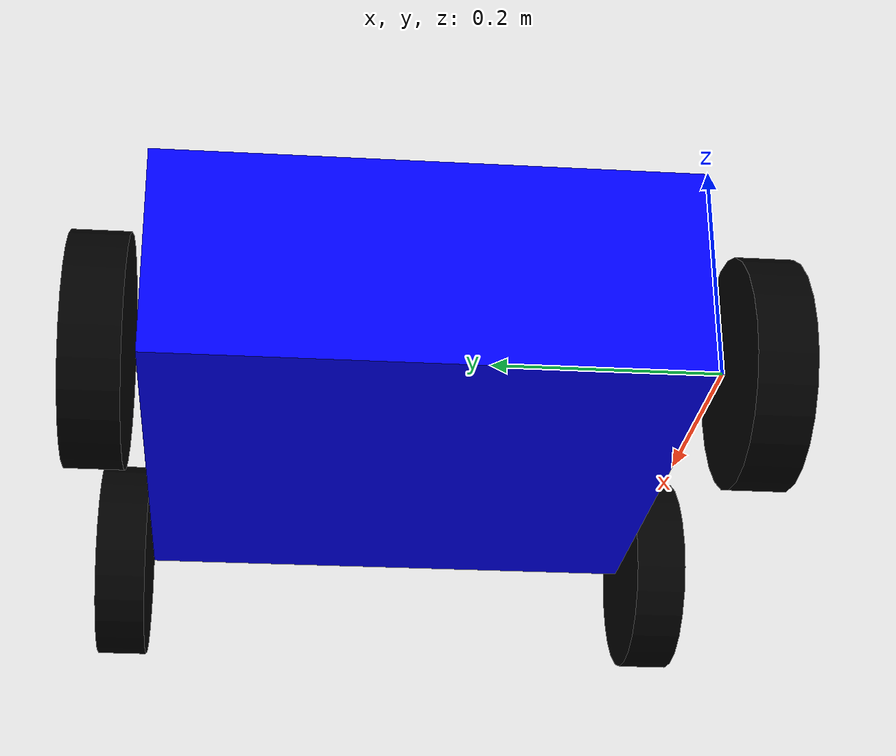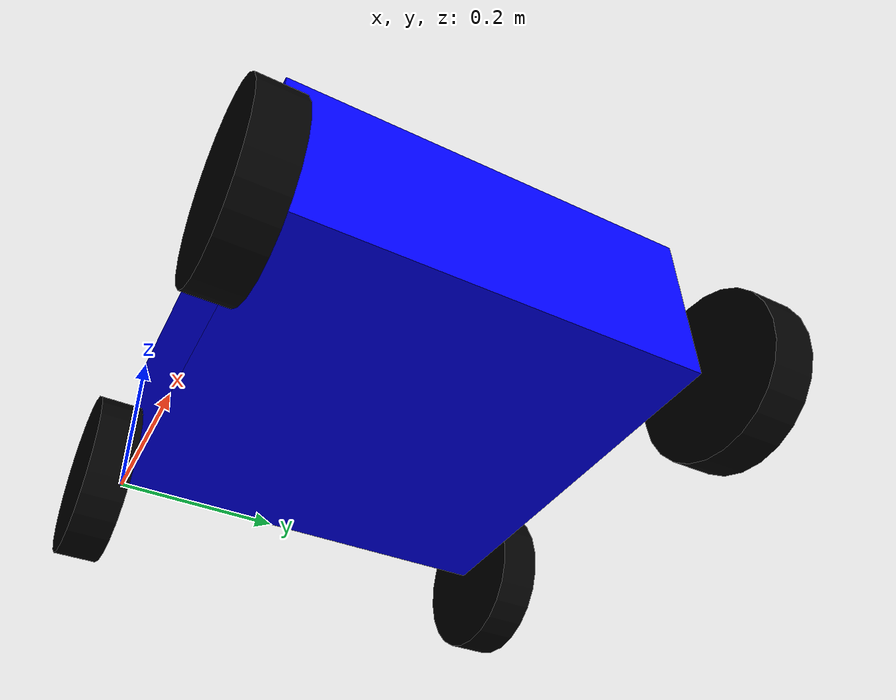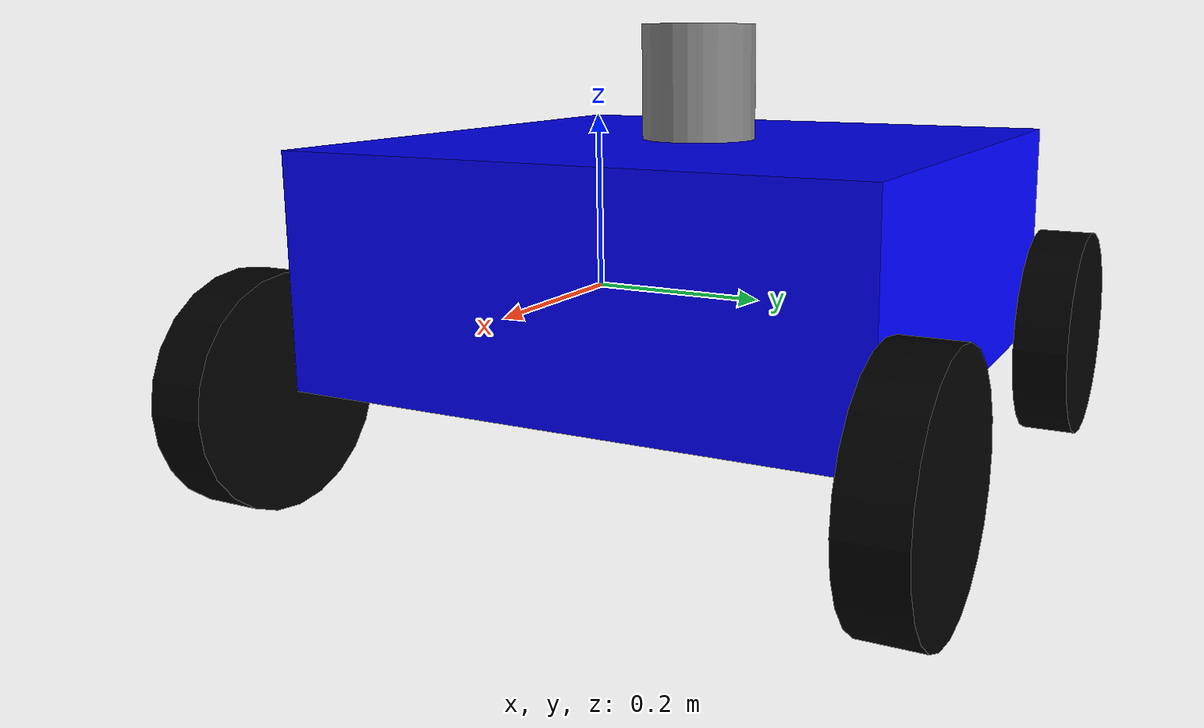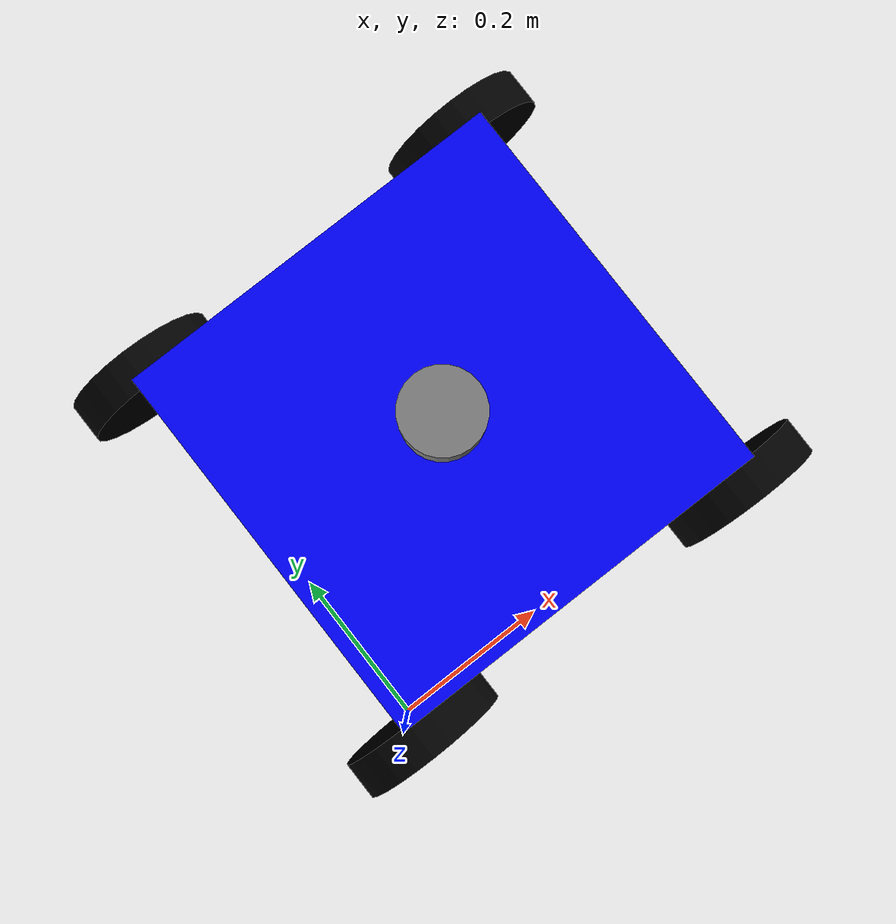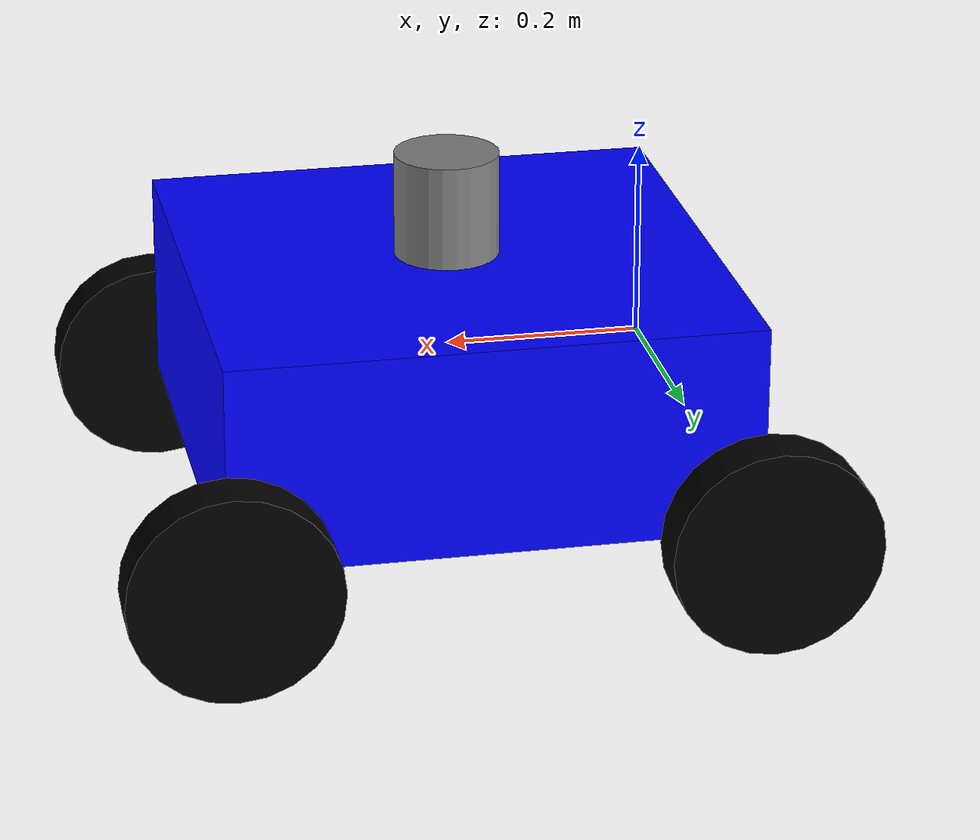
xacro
<?xml version="1.0"?>
<robot xmlns:xacro="http://ros.org/wiki/xacro" name="ground_drone">

<xacro:include filename="inertial_macros.xacro"/>

  <link name="base_footprint">
  </link>

  <!-- Define the main body -->
  <link name="body">
    <visual>
    <origin xyz="0.25 0.25 0.1"/>
      <geometry>
        <box size="0.5 0.5 0.2"/> <!-- Adjust size as needed -->
      </geometry>
      <material name="blue">
        <color rgba="0 0 1 1"/>
      </material>
    </visual>
     <collision>
      <geometry>
        <box size="0.5 0.5 0.2"/> <!-- Adjust size as needed -->
      </geometry>
    </collision>
     <xacro:inertial_box mass="0.1" x="0.5" y="0.5" z="0.2">
    <origin xyz="0 0 0" rpy="0 0 0" />
    </xacro:inertial_box>
  </link>

  <joint name="body_to_base_link" type="fixed">
    <parent link="base_footprint"/>
    <child link="body"/>
  </joint>

      <gazebo reference="body">
        <material>Gazebo/White</material>
    </gazebo>

  <!-- Define wheels -->
  <link name="wheel_front_left">
    <visual>
      <geometry>
        <cylinder radius="0.1" length="0.05"/>
      </geometry>
      <material name="black">
        <color rgba="0 0 0 1"/>
      </material>
    </visual>
    <collision>
      <geometry>
        <cylinder radius="0.1" length="0.05"/>
      </geometry>
    </collision>
     <xacro:inertial_cylinder mass="0.1" length="0.05" radius="0.1">
    <origin xyz="0 0 0" rpy="0 0 0" />
    </xacro:inertial_cylinder>
  </link>

	<gazebo reference="wheel_front_left">
        <material>Gazebo/Black</material>
    </gazebo>

  <link name="wheel_front_right">
    <visual>
      <geometry>
        <cylinder radius="0.1" length="0.05"/>
      </geometry>
      <material name="black"/>
    </visual>
    <collision>
      <geometry>
        <cylinder radius="0.1" length="0.05"/>
      </geometry>
    </collision>
     <xacro:inertial_cylinder mass="0.1" length="0.05" radius="0.1">
    <origin xyz="0 0 0" rpy="0 0 0" />
    </xacro:inertial_cylinder>
  </link>

	<gazebo reference="wheel_front_right">
        <material>Gazebo/Black</material>
    </gazebo>

  <link name="wheel_rear_left">
    <visual>
      <geometry>
        <cylinder radius="0.1" length="0.05"/>
      </geometry>
      <material name="black"/>
    </visual>
      <collision>
      <geometry>
        <cylinder radius="0.1" length="0.05"/>
      </geometry>
    </collision>
     <xacro:inertial_cylinder mass="0.1" length="0.05" radius="0.1">
    <origin xyz="0 0 0" rpy="0 0 0" />
    </xacro:inertial_cylinder>
  </link>

	<gazebo reference="wheel_rear_left">
        <material>Gazebo/Black</material>
    </gazebo>

  <link name="wheel_rear_right">
    <visual>
      <geometry>
        <cylinder radius="0.1" length="0.05"/>
      </geometry>
      <material name="black"/>
    </visual>
     <collision>
      <geometry>
        <cylinder radius="0.1" length="0.05"/>
      </geometry>
    </collision>
    <xacro:inertial_cylinder mass="0.1" length="0.05" radius="0.1">
    <origin xyz="0 0 0" rpy="0 0 0" />
    </xacro:inertial_cylinder>
  </link>

	<gazebo reference="wheel_rear_right">
        <material>Gazebo/Black</material>
    </gazebo>

<!-- Define LiDAR -->
  <link name="lidar">
    <visual>
      <geometry>
        <cylinder radius="0.05" length="0.1"/>
      </geometry>
      <material name="grey">
        <color rgba="0.5 0.5 0.5 1"/>
      </material>
    </visual>
      <collision>
      <geometry>
        <cylinder radius="0.05" length="0.1"/>
      </geometry>
    </collision>
    <xacro:inertial_cylinder mass="0.1" radius="0.05" length="0.1">
    <origin xyz="0 0 0" rpy="0 0 0" />
    </xacro:inertial_cylinder>
  </link>

  	<gazebo reference="lidar">
        <material>Gazebo/Blue</material>
    </gazebo>

  <!-- Define joints -->
  <joint name="base_to_front_left_wheel" type="continuous">
    <parent link="base_footprint"/>
    <child link="wheel_front_left"/>
    <origin xyz="0.5 -0.03 0" rpy="-1.5708 0 0"/>
    <axis xyz="0 0 1"/>
  </joint>

  <joint name="base_to_front_right_wheel" type="continuous">
    <parent link="base_footprint"/>
    <child link="wheel_front_right"/>
    <origin xyz="0.5 0.53 0" rpy="1.5708 0 0"/>
    <axis xyz="0 0 1"/>
  </joint>

  <joint name="base_to_rear_left_wheel" type="continuous">
    <parent link="base_footprint"/>
    <child link="wheel_rear_left"/>
    <origin xyz="0 -0.03 0" rpy="-1.5708 0 0"/>
    <axis xyz="0 0 1"/>
  </joint>

  <joint name="base_to_rear_right_wheel" type="continuous">
    <parent link="base_footprint"/>
    <child link="wheel_rear_right"/>
    <origin xyz="0 0.53 0" rpy="1.5708 0 0"/>
    <axis xyz="0 0 1"/>
  </joint>

<joint name="lidar_joint" type="fixed">
    <parent link="base_footprint"/>
    <child link="lidar"/>
    <origin xyz="0.25 0.25 0.25" rpy="0 0 0"/>
  </joint>

  <gazebo>
    <plugin name="rosa_controller" filename="libgazebo_ros_omni_drive.so">
      <commandTopic>cmd_vel</commandTopic>
      <odometryTopic>odom</odometryTopic>
      <odometryFrame>odom</odometryFrame>
      <odometryRate>20.0</odometryRate>
      <robotBaseFrame>base_footprint</robotBaseFrame>
      <wheel_radius>0.1</wheel_radius>
      <base_length>0.430</base_length>
      <base_width>0.315</base_width>
      <front_left_joint>base_to_front_left_wheel</front_left_joint>
      <front_right_joint>base_to_front_right_wheel</front_right_joint>
      <rear_left_joint>base_to_rear_left_wheel</rear_left_joint>
      <rear_right_joint>base_to_rear_right_wheel</rear_right_joint>
      <wheel_max_speed> 20.0 </wheel_max_speed>
      <wheel_acceleration> 10.0</wheel_acceleration>
      <joint_config>1 1 -1 -1</joint_config>
    </plugin>
  </gazebo>

</robot>
